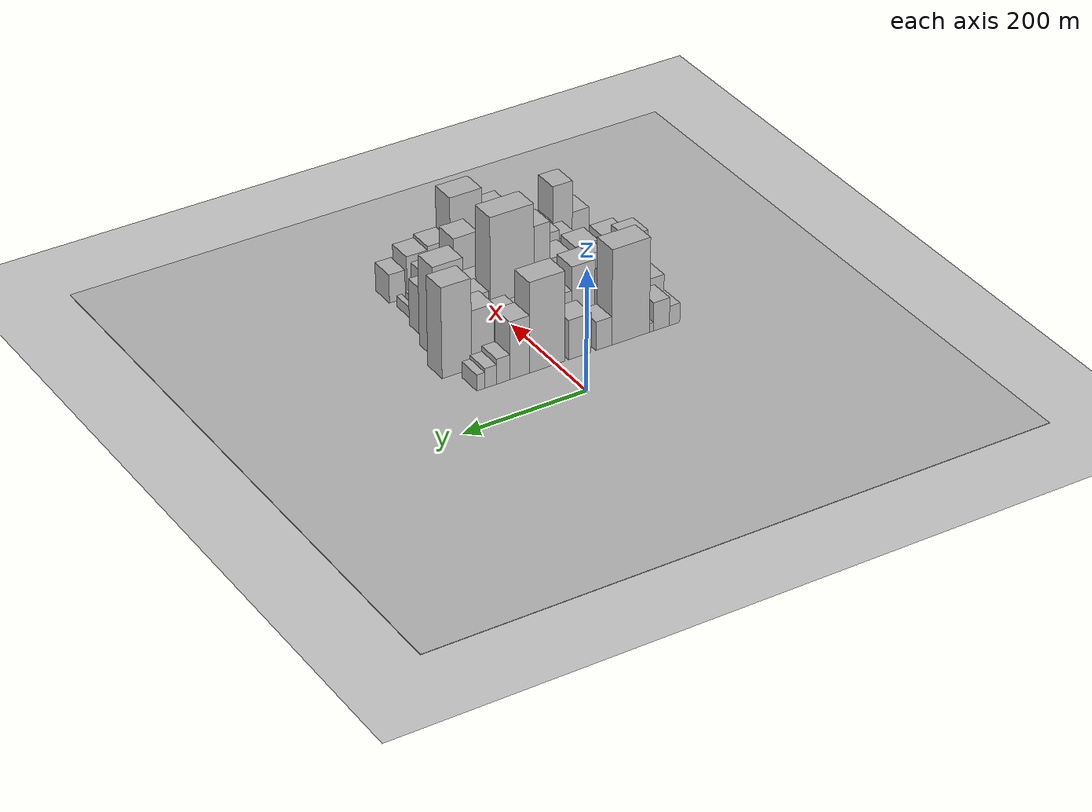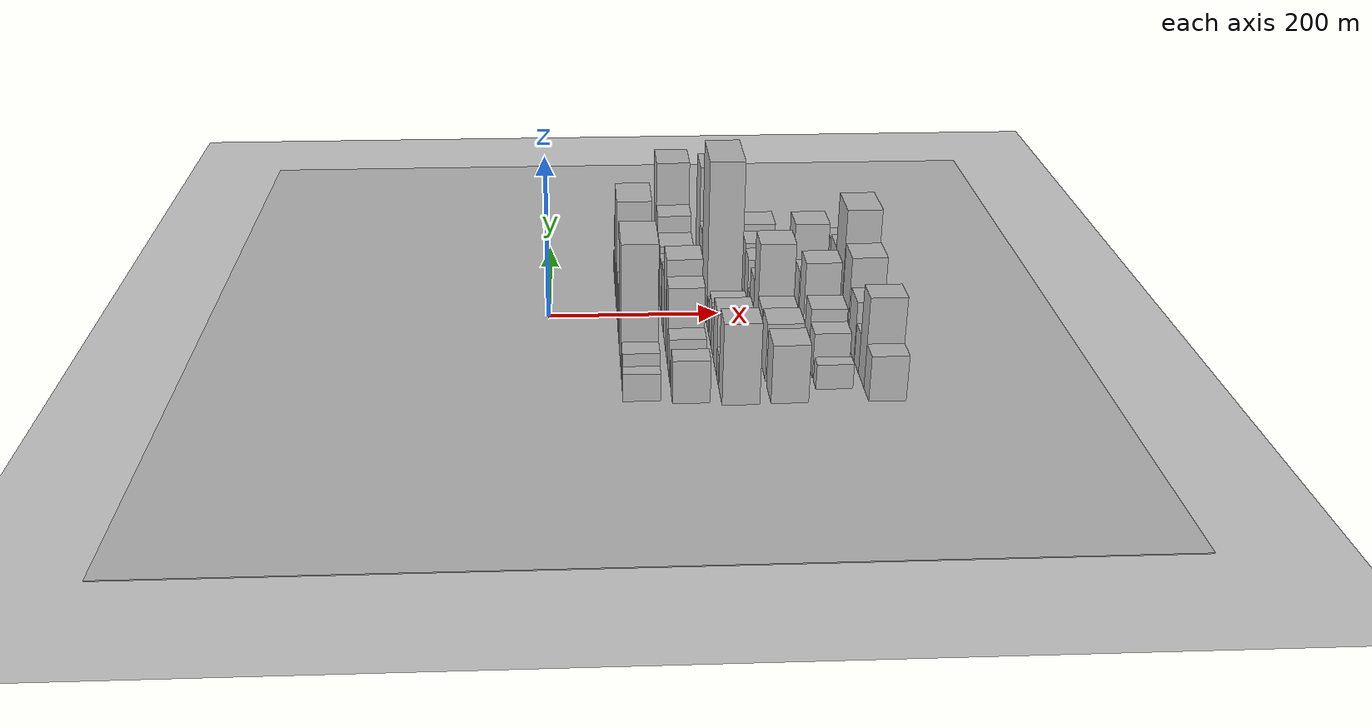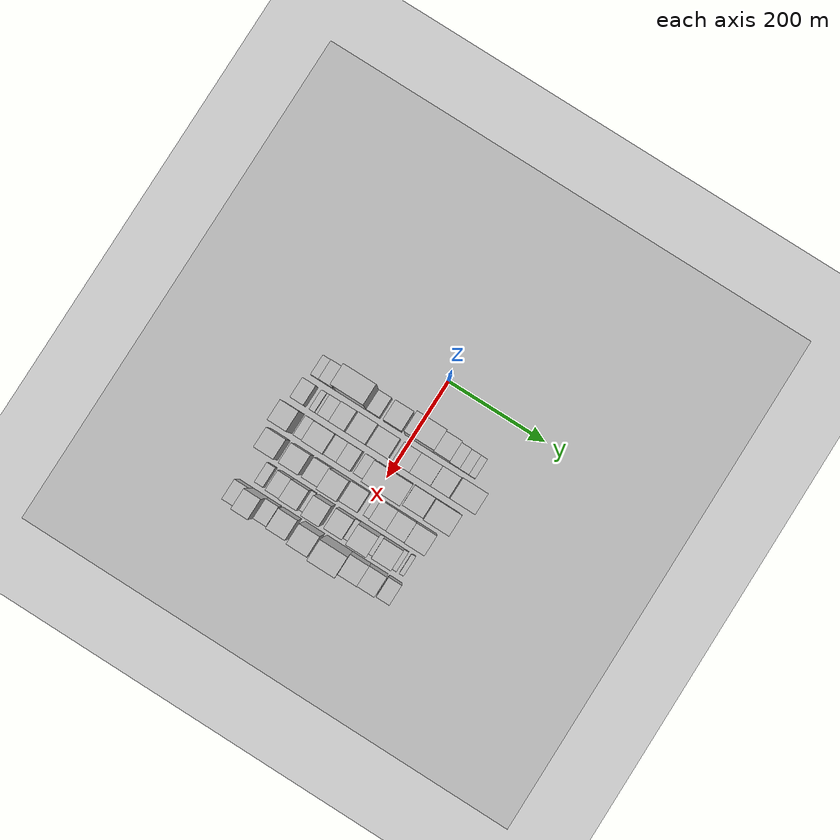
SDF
<sdf version="1.6">
 <world name="default">
  <include><name>ground_plane_1</name><uri>model://HANNAS_ground_plane</uri></include>
  <include>
   <name>ground_plane_2</name>
   <uri>model://HANNAS_ground_plane</uri>
   <pose>100 0 0  0 0 0</pose>
  </include>
  <model name="building_23">
   <static>1</static>
   <pose>100.0000 -197.5785 0 0.000000 0.000000 0.000000</pose>
   <link name="link">
    <pose>0 0 16.50 0 0 0</pose>
    <collision name="collision"><geometry><box><size>40.0000 17.6627 33.0000</size></box></geometry></collision>
    <visual name="visual">
     <cast_shadows>0</cast_shadows>
     <geometry><box><size>40.0000 17.6627 33.0000</size></box></geometry>
     <material>
      <script>
       <uri>model://HANNAS_wall/materials/scripts</uri>
       <uri>model://HANNAS_wall/materials/textures</uri>
       <name>vrc/HANNAS_wall</name>
      </script>
     </material>
    </visual>
   </link>
  </model>
  <model name="building_24">
   <static>1</static>
   <pose>100.0000 -175.1531 0 0.000000 0.000000 0.000000</pose>
   <link name="link">
    <pose>0 0 24.00 0 0 0</pose>
    <collision name="collision"><geometry><box><size>40.0000 27.1880 48.0000</size></box></geometry></collision>
    <visual name="visual">
     <cast_shadows>0</cast_shadows>
     <geometry><box><size>40.0000 27.1880 48.0000</size></box></geometry>
     <material>
      <script>
       <uri>model://HANNAS_wall/materials/scripts</uri>
       <uri>model://HANNAS_wall/materials/textures</uri>
       <name>vrc/HANNAS_wall</name>
      </script>
     </material>
    </visual>
   </link>
  </model>
  <model name="building_25">
   <static>1</static>
   <pose>100.0000 -158.2635 0 0.000000 0.000000 0.000000</pose>
   <link name="link">
    <pose>0 0 7.50 0 0 0</pose>
    <collision name="collision"><geometry><box><size>40.0000 6.5912 15.0000</size></box></geometry></collision>
    <visual name="visual">
     <cast_shadows>0</cast_shadows>
     <geometry><box><size>40.0000 6.5912 15.0000</size></box></geometry>
     <material>
      <script>
       <uri>model://HANNAS_wall/materials/scripts</uri>
       <uri>model://HANNAS_wall/materials/textures</uri>
       <name>vrc/HANNAS_wall</name>
      </script>
     </material>
    </visual>
   </link>
  </model>
  <model name="building_26">
   <static>1</static>
   <pose>100.0000 -123.3607 0 0.000000 0.000000 0.000000</pose>
   <link name="link">
    <pose>0 0 79.50 0 0 0</pose>
    <collision name="collision"><geometry><box><size>40.0000 63.2144 159.0000</size></box></geometry></collision>
    <visual name="visual">
     <cast_shadows>0</cast_shadows>
     <geometry><box><size>40.0000 63.2144 159.0000</size></box></geometry>
     <material>
      <script>
       <uri>model://HANNAS_wall/materials/scripts</uri>
       <uri>model://HANNAS_wall/materials/textures</uri>
       <name>vrc/HANNAS_wall</name>
      </script>
     </material>
    </visual>
   </link>
  </model>
  <model name="building_27">
   <static>1</static>
   <pose>100.0000 -78.5831 0 0.000000 0.000000 0.000000</pose>
   <link name="link">
    <pose>0 0 24.00 0 0 0</pose>
    <collision name="collision"><geometry><box><size>40.0000 26.3408 48.0000</size></box></geometry></collision>
    <visual name="visual">
     <cast_shadows>0</cast_shadows>
     <geometry><box><size>40.0000 26.3408 48.0000</size></box></geometry>
     <material>
      <script>
       <uri>model://HANNAS_wall/materials/scripts</uri>
       <uri>model://HANNAS_wall/materials/textures</uri>
       <name>vrc/HANNAS_wall</name>
      </script>
     </material>
    </visual>
   </link>
  </model>
  <model name="building_28">
   <static>1</static>
   <pose>100.0000 -38.6893 0 0.000000 0.000000 0.000000</pose>
   <link name="link">
    <pose>0 0 33.00 0 0 0</pose>
    <collision name="collision"><geometry><box><size>40.0000 37.4467 66.0000</size></box></geometry></collision>
    <visual name="visual">
     <cast_shadows>0</cast_shadows>
     <geometry><box><size>40.0000 37.4467 66.0000</size></box></geometry>
     <material>
      <script>
       <uri>model://HANNAS_wall/materials/scripts</uri>
       <uri>model://HANNAS_wall/materials/textures</uri>
       <name>vrc/HANNAS_wall</name>
      </script>
     </material>
    </visual>
   </link>
  </model>
  <model name="building_29">
   <static>1</static>
   <pose>100.0000 14.9966 0 0.000000 0.000000 0.000000</pose>
   <link name="link">
    <pose>0 0 75.00 0 0 0</pose>
    <collision name="collision"><geometry><box><size>40.0000 57.9252 150.0000</size></box></geometry></collision>
    <visual name="visual">
     <cast_shadows>0</cast_shadows>
     <geometry><box><size>40.0000 57.9252 150.0000</size></box></geometry>
     <material>
      <script>
       <uri>model://HANNAS_wall/materials/scripts</uri>
       <uri>model://HANNAS_wall/materials/textures</uri>
       <name>vrc/HANNAS_wall</name>
      </script>
     </material>
    </visual>
   </link>
  </model>
  <model name="building_30">
   <static>1</static>
   <pose>100.0000 59.9038 0 0.000000 0.000000 0.000000</pose>
   <link name="link">
    <pose>0 0 48.00 0 0 0</pose>
    <collision name="collision"><geometry><box><size>40.0000 31.8891 96.0000</size></box></geometry></collision>
    <visual name="visual">
     <cast_shadows>0</cast_shadows>
     <geometry><box><size>40.0000 31.8891 96.0000</size></box></geometry>
     <material>
      <script>
       <uri>model://HANNAS_wall/materials/scripts</uri>
       <uri>model://HANNAS_wall/materials/textures</uri>
       <name>vrc/HANNAS_wall</name>
      </script>
     </material>
    </visual>
   </link>
  </model>
  <model name="building_31">
   <static>1</static>
   <pose>100.0000 86.7170 0 0.000000 0.000000 0.000000</pose>
   <link name="link">
    <pose>0 0 21.00 0 0 0</pose>
    <collision name="collision"><geometry><box><size>40.0000 21.7373 42.0000</size></box></geometry></collision>
    <visual name="visual">
     <cast_shadows>0</cast_shadows>
     <geometry><box><size>40.0000 21.7373 42.0000</size></box></geometry>
     <material>
      <script>
       <uri>model://HANNAS_wall/materials/scripts</uri>
       <uri>model://HANNAS_wall/materials/textures</uri>
       <name>vrc/HANNAS_wall</name>
      </script>
     </material>
    </visual>
   </link>
  </model>
  <model name="building_32">
   <static>1</static>
   <pose>100.0000 107.1143 0 0.000000 0.000000 0.000000</pose>
   <link name="link">
    <pose>0 0 16.50 0 0 0</pose>
    <collision name="collision"><geometry><box><size>40.0000 19.0572 33.0000</size></box></geometry></collision>
    <visual name="visual">
     <cast_shadows>0</cast_shadows>
     <geometry><box><size>40.0000 19.0572 33.0000</size></box></geometry>
     <material>
      <script>
       <uri>model://HANNAS_wall/materials/scripts</uri>
       <uri>model://HANNAS_wall/materials/textures</uri>
       <name>vrc/HANNAS_wall</name>
      </script>
     </material>
    </visual>
   </link>
  </model>
  <model name="building_33">
   <static>1</static>
   <pose>100.0000 123.2830 0 0.000000 0.000000 0.000000</pose>
   <link name="link">
    <pose>0 0 13.50 0 0 0</pose>
    <collision name="collision"><geometry><box><size>40.0000 13.2802 27.0000</size></box></geometry></collision>
    <visual name="visual">
     <cast_shadows>0</cast_shadows>
     <geometry><box><size>40.0000 13.2802 27.0000</size></box></geometry>
     <material>
      <script>
       <uri>model://HANNAS_wall/materials/scripts</uri>
       <uri>model://HANNAS_wall/materials/textures</uri>
       <name>vrc/HANNAS_wall</name>
      </script>
     </material>
    </visual>
   </link>
  </model>
  <model name="building_74">
   <static>1</static>
   <pose>152.0000 -199.3614 0 0.000000 0.000000 0.000000</pose>
   <link name="link">
    <pose>0 0 25.50 0 0 0</pose>
    <collision name="collision"><geometry><box><size>40.0000 26.9984 51.0000</size></box></geometry></collision>
    <visual name="visual">
     <cast_shadows>0</cast_shadows>
     <geometry><box><size>40.0000 26.9984 51.0000</size></box></geometry>
     <material>
      <script>
       <uri>model://HANNAS_wall/materials/scripts</uri>
       <uri>model://HANNAS_wall/materials/textures</uri>
       <name>vrc/HANNAS_wall</name>
      </script>
     </material>
    </visual>
   </link>
  </model>
  <model name="building_75">
   <static>1</static>
   <pose>152.0000 -171.3383 0 0.000000 0.000000 0.000000</pose>
   <link name="link">
    <pose>0 0 13.50 0 0 0</pose>
    <collision name="collision"><geometry><box><size>40.0000 11.0480 27.0000</size></box></geometry></collision>
    <visual name="visual">
     <cast_shadows>0</cast_shadows>
     <geometry><box><size>40.0000 11.0480 27.0000</size></box></geometry>
     <material>
      <script>
       <uri>model://HANNAS_wall/materials/scripts</uri>
       <uri>model://HANNAS_wall/materials/textures</uri>
       <name>vrc/HANNAS_wall</name>
      </script>
     </material>
    </visual>
   </link>
  </model>
  <model name="building_76">
   <static>1</static>
   <pose>152.0000 -161.9786 0 0.000000 0.000000 0.000000</pose>
   <link name="link">
    <pose>0 0 9.00 0 0 0</pose>
    <collision name="collision"><geometry><box><size>40.0000 7.6713 18.0000</size></box></geometry></collision>
    <visual name="visual">
     <cast_shadows>0</cast_shadows>
     <geometry><box><size>40.0000 7.6713 18.0000</size></box></geometry>
     <material>
      <script>
       <uri>model://HANNAS_wall/materials/scripts</uri>
       <uri>model://HANNAS_wall/materials/textures</uri>
       <name>vrc/HANNAS_wall</name>
      </script>
     </material>
    </visual>
   </link>
  </model>
  <model name="building_77">
   <static>1</static>
   <pose>152.0000 -144.4575 0 0.000000 0.000000 0.000000</pose>
   <link name="link">
    <pose>0 0 24.00 0 0 0</pose>
    <collision name="collision"><geometry><box><size>40.0000 27.3708 48.0000</size></box></geometry></collision>
    <visual name="visual">
     <cast_shadows>0</cast_shadows>
     <geometry><box><size>40.0000 27.3708 48.0000</size></box></geometry>
     <material>
      <script>
       <uri>model://HANNAS_wall/materials/scripts</uri>
       <uri>model://HANNAS_wall/materials/textures</uri>
       <name>vrc/HANNAS_wall</name>
      </script>
     </material>
    </visual>
   </link>
  </model>
  <model name="building_78">
   <static>1</static>
   <pose>152.0000 -115.3826 0 0.000000 0.000000 0.000000</pose>
   <link name="link">
    <pose>0 0 48.00 0 0 0</pose>
    <collision name="collision"><geometry><box><size>40.0000 30.7791 96.0000</size></box></geometry></collision>
    <visual name="visual">
     <cast_shadows>0</cast_shadows>
     <geometry><box><size>40.0000 30.7791 96.0000</size></box></geometry>
     <material>
      <script>
       <uri>model://HANNAS_wall/materials/scripts</uri>
       <uri>model://HANNAS_wall/materials/textures</uri>
       <name>vrc/HANNAS_wall</name>
      </script>
     </material>
    </visual>
   </link>
  </model>
  <model name="building_79">
   <static>1</static>
   <pose>152.0000 -76.7484 0 0.000000 0.000000 0.000000</pose>
   <link name="link">
    <pose>0 0 57.00 0 0 0</pose>
    <collision name="collision"><geometry><box><size>40.0000 38.4891 114.0000</size></box></geometry></collision>
    <visual name="visual">
     <cast_shadows>0</cast_shadows>
     <geometry><box><size>40.0000 38.4891 114.0000</size></box></geometry>
     <material>
      <script>
       <uri>model://HANNAS_wall/materials/scripts</uri>
       <uri>model://HANNAS_wall/materials/textures</uri>
       <name>vrc/HANNAS_wall</name>
      </script>
     </material>
    </visual>
   </link>
  </model>
  <model name="building_80">
   <static>1</static>
   <pose>152.0000 -35.9787 0 0.000000 0.000000 0.000000</pose>
   <link name="link">
    <pose>0 0 37.50 0 0 0</pose>
    <collision name="collision"><geometry><box><size>40.0000 43.0503 75.0000</size></box></geometry></collision>
    <visual name="visual">
     <cast_shadows>0</cast_shadows>
     <geometry><box><size>40.0000 43.0503 75.0000</size></box></geometry>
     <material>
      <script>
       <uri>model://HANNAS_wall/materials/scripts</uri>
       <uri>model://HANNAS_wall/materials/textures</uri>
       <name>vrc/HANNAS_wall</name>
      </script>
     </material>
    </visual>
   </link>
  </model>
  <model name="building_81">
   <static>1</static>
   <pose>152.0000 11.0059 0 0.000000 0.000000 0.000000</pose>
   <link name="link">
    <pose>0 0 33.00 0 0 0</pose>
    <collision name="collision"><geometry><box><size>40.0000 34.9190 66.0000</size></box></geometry></collision>
    <visual name="visual">
     <cast_shadows>0</cast_shadows>
     <geometry><box><size>40.0000 34.9190 66.0000</size></box></geometry>
     <material>
      <script>
       <uri>model://HANNAS_wall/materials/scripts</uri>
       <uri>model://HANNAS_wall/materials/textures</uri>
       <name>vrc/HANNAS_wall</name>
      </script>
     </material>
    </visual>
   </link>
  </model>
  <model name="building_82">
   <static>1</static>
   <pose>152.0000 49.4625 0 0.000000 0.000000 0.000000</pose>
   <link name="link">
    <pose>0 0 37.50 0 0 0</pose>
    <collision name="collision"><geometry><box><size>40.0000 41.9942 75.0000</size></box></geometry></collision>
    <visual name="visual">
     <cast_shadows>0</cast_shadows>
     <geometry><box><size>40.0000 41.9942 75.0000</size></box></geometry>
     <material>
      <script>
       <uri>model://HANNAS_wall/materials/scripts</uri>
       <uri>model://HANNAS_wall/materials/textures</uri>
       <name>vrc/HANNAS_wall</name>
      </script>
     </material>
    </visual>
   </link>
  </model>
  <model name="building_83">
   <static>1</static>
   <pose>152.0000 88.7777 0 0.000000 0.000000 0.000000</pose>
   <link name="link">
    <pose>0 0 48.00 0 0 0</pose>
    <collision name="collision"><geometry><box><size>40.0000 36.6362 96.0000</size></box></geometry></collision>
    <visual name="visual">
     <cast_shadows>0</cast_shadows>
     <geometry><box><size>40.0000 36.6362 96.0000</size></box></geometry>
     <material>
      <script>
       <uri>model://HANNAS_wall/materials/scripts</uri>
       <uri>model://HANNAS_wall/materials/textures</uri>
       <name>vrc/HANNAS_wall</name>
      </script>
     </material>
    </visual>
   </link>
  </model>
  <model name="building_84">
   <static>1</static>
   <pose>152.0000 131.1777 0 0.000000 0.000000 0.000000</pose>
   <link name="link">
    <pose>0 0 75.00 0 0 0</pose>
    <collision name="collision"><geometry><box><size>40.0000 48.1637 150.0000</size></box></geometry></collision>
    <visual name="visual">
     <cast_shadows>0</cast_shadows>
     <geometry><box><size>40.0000 48.1637 150.0000</size></box></geometry>
     <material>
      <script>
       <uri>model://HANNAS_wall/materials/scripts</uri>
       <uri>model://HANNAS_wall/materials/textures</uri>
       <name>vrc/HANNAS_wall</name>
      </script>
     </material>
    </visual>
   </link>
  </model>
  <model name="building_128">
   <static>1</static>
   <pose>204.0000 -199.7542 0 0.000000 0.000000 0.000000</pose>
   <link name="link">
    <pose>0 0 48.00 0 0 0</pose>
    <collision name="collision"><geometry><box><size>40.0000 37.2181 96.0000</size></box></geometry></collision>
    <visual name="visual">
     <cast_shadows>0</cast_shadows>
     <geometry><box><size>40.0000 37.2181 96.0000</size></box></geometry>
     <material>
      <script>
       <uri>model://HANNAS_wall/materials/scripts</uri>
       <uri>model://HANNAS_wall/materials/textures</uri>
       <name>vrc/HANNAS_wall</name>
      </script>
     </material>
    </visual>
   </link>
  </model>
  <model name="building_129">
   <static>1</static>
   <pose>204.0000 -164.5757 0 0.000000 0.000000 0.000000</pose>
   <link name="link">
    <pose>0 0 18.00 0 0 0</pose>
    <collision name="collision"><geometry><box><size>40.0000 21.1389 36.0000</size></box></geometry></collision>
    <visual name="visual">
     <cast_shadows>0</cast_shadows>
     <geometry><box><size>40.0000 21.1389 36.0000</size></box></geometry>
     <material>
      <script>
       <uri>model://HANNAS_wall/materials/scripts</uri>
       <uri>model://HANNAS_wall/materials/textures</uri>
       <name>vrc/HANNAS_wall</name>
      </script>
     </material>
    </visual>
   </link>
  </model>
  <model name="building_130">
   <static>1</static>
   <pose>204.0000 -133.0134 0 0.000000 0.000000 0.000000</pose>
   <link name="link">
    <pose>0 0 37.50 0 0 0</pose>
    <collision name="collision"><geometry><box><size>40.0000 41.9856 75.0000</size></box></geometry></collision>
    <visual name="visual">
     <cast_shadows>0</cast_shadows>
     <geometry><box><size>40.0000 41.9856 75.0000</size></box></geometry>
     <material>
      <script>
       <uri>model://HANNAS_wall/materials/scripts</uri>
       <uri>model://HANNAS_wall/materials/textures</uri>
       <name>vrc/HANNAS_wall</name>
      </script>
     </material>
    </visual>
   </link>
  </model>
  <model name="building_131">
   <static>1</static>
   <pose>204.0000 -99.1862 0 0.000000 0.000000 0.000000</pose>
   <link name="link">
    <pose>0 0 25.50 0 0 0</pose>
    <collision name="collision"><geometry><box><size>40.0000 25.6688 51.0000</size></box></geometry></collision>
    <visual name="visual">
     <cast_shadows>0</cast_shadows>
     <geometry><box><size>40.0000 25.6688 51.0000</size></box></geometry>
     <material>
      <script>
       <uri>model://HANNAS_wall/materials/scripts</uri>
       <uri>model://HANNAS_wall/materials/textures</uri>
       <name>vrc/HANNAS_wall</name>
      </script>
     </material>
    </visual>
   </link>
  </model>
  <model name="building_132">
   <static>1</static>
   <pose>204.0000 -72.0306 0 0.000000 0.000000 0.000000</pose>
   <link name="link">
    <pose>0 0 28.50 0 0 0</pose>
    <collision name="collision"><geometry><box><size>40.0000 28.6424 57.0000</size></box></geometry></collision>
    <visual name="visual">
     <cast_shadows>0</cast_shadows>
     <geometry><box><size>40.0000 28.6424 57.0000</size></box></geometry>
     <material>
      <script>
       <uri>model://HANNAS_wall/materials/scripts</uri>
       <uri>model://HANNAS_wall/materials/textures</uri>
       <name>vrc/HANNAS_wall</name>
      </script>
     </material>
    </visual>
   </link>
  </model>
  <model name="building_133">
   <static>1</static>
   <pose>204.0000 -42.7943 0 0.000000 0.000000 0.000000</pose>
   <link name="link">
    <pose>0 0 19.50 0 0 0</pose>
    <collision name="collision"><geometry><box><size>40.0000 19.8303 39.0000</size></box></geometry></collision>
    <visual name="visual">
     <cast_shadows>0</cast_shadows>
     <geometry><box><size>40.0000 19.8303 39.0000</size></box></geometry>
     <material>
      <script>
       <uri>model://HANNAS_wall/materials/scripts</uri>
       <uri>model://HANNAS_wall/materials/textures</uri>
       <name>vrc/HANNAS_wall</name>
      </script>
     </material>
    </visual>
   </link>
  </model>
  <model name="building_134">
   <static>1</static>
   <pose>204.0000 9.0122 0 0.000000 0.000000 0.000000</pose>
   <link name="link">
    <pose>0 0 100.50 0 0 0</pose>
    <collision name="collision"><geometry><box><size>40.0000 71.7827 201.0000</size></box></geometry></collision>
    <visual name="visual">
     <cast_shadows>0</cast_shadows>
     <geometry><box><size>40.0000 71.7827 201.0000</size></box></geometry>
     <material>
      <script>
       <uri>model://HANNAS_wall/materials/scripts</uri>
       <uri>model://HANNAS_wall/materials/textures</uri>
       <name>vrc/HANNAS_wall</name>
      </script>
     </material>
    </visual>
   </link>
  </model>
  <model name="building_135">
   <static>1</static>
   <pose>204.0000 68.5169 0 0.000000 0.000000 0.000000</pose>
   <link name="link">
    <pose>0 0 40.50 0 0 0</pose>
    <collision name="collision"><geometry><box><size>40.0000 41.2268 81.0000</size></box></geometry></collision>
    <visual name="visual">
     <cast_shadows>0</cast_shadows>
     <geometry><box><size>40.0000 41.2268 81.0000</size></box></geometry>
     <material>
      <script>
       <uri>model://HANNAS_wall/materials/scripts</uri>
       <uri>model://HANNAS_wall/materials/textures</uri>
       <name>vrc/HANNAS_wall</name>
      </script>
     </material>
    </visual>
   </link>
  </model>
  <model name="building_136">
   <static>1</static>
   <pose>204.0000 113.7390 0 0.000000 0.000000 0.000000</pose>
   <link name="link">
    <pose>0 0 75.00 0 0 0</pose>
    <collision name="collision"><geometry><box><size>40.0000 49.2173 150.0000</size></box></geometry></collision>
    <visual name="visual">
     <cast_shadows>0</cast_shadows>
     <geometry><box><size>40.0000 49.2173 150.0000</size></box></geometry>
     <material>
      <script>
       <uri>model://HANNAS_wall/materials/scripts</uri>
       <uri>model://HANNAS_wall/materials/textures</uri>
       <name>vrc/HANNAS_wall</name>
      </script>
     </material>
    </visual>
   </link>
  </model>
  <model name="building_179">
   <static>1</static>
   <pose>256.0000 -196.9965 0 0.000000 0.000000 0.000000</pose>
   <link name="link">
    <pose>0 0 34.50 0 0 0</pose>
    <collision name="collision"><geometry><box><size>40.0000 39.6292 69.0000</size></box></geometry></collision>
    <visual name="visual">
     <cast_shadows>0</cast_shadows>
     <geometry><box><size>40.0000 39.6292 69.0000</size></box></geometry>
     <material>
      <script>
       <uri>model://HANNAS_wall/materials/scripts</uri>
       <uri>model://HANNAS_wall/materials/textures</uri>
       <name>vrc/HANNAS_wall</name>
      </script>
     </material>
    </visual>
   </link>
  </model>
  <model name="building_180">
   <static>1</static>
   <pose>256.0000 -147.5989 0 0.000000 0.000000 0.000000</pose>
   <link name="link">
    <pose>0 0 34.50 0 0 0</pose>
    <collision name="collision"><geometry><box><size>40.0000 39.1661 69.0000</size></box></geometry></collision>
    <visual name="visual">
     <cast_shadows>0</cast_shadows>
     <geometry><box><size>40.0000 39.1661 69.0000</size></box></geometry>
     <material>
      <script>
       <uri>model://HANNAS_wall/materials/scripts</uri>
       <uri>model://HANNAS_wall/materials/textures</uri>
       <name>vrc/HANNAS_wall</name>
      </script>
     </material>
    </visual>
   </link>
  </model>
  <model name="building_181">
   <static>1</static>
   <pose>256.0000 -103.7939 0 0.000000 0.000000 0.000000</pose>
   <link name="link">
    <pose>0 0 31.50 0 0 0</pose>
    <collision name="collision"><geometry><box><size>40.0000 36.4439 63.0000</size></box></geometry></collision>
    <visual name="visual">
     <cast_shadows>0</cast_shadows>
     <geometry><box><size>40.0000 36.4439 63.0000</size></box></geometry>
     <material>
      <script>
       <uri>model://HANNAS_wall/materials/scripts</uri>
       <uri>model://HANNAS_wall/materials/textures</uri>
       <name>vrc/HANNAS_wall</name>
      </script>
     </material>
    </visual>
   </link>
  </model>
  <model name="building_182">
   <static>1</static>
   <pose>256.0000 -66.1404 0 0.000000 0.000000 0.000000</pose>
   <link name="link">
    <pose>0 0 63.00 0 0 0</pose>
    <collision name="collision"><geometry><box><size>40.0000 38.8633 126.0000</size></box></geometry></collision>
    <visual name="visual">
     <cast_shadows>0</cast_shadows>
     <geometry><box><size>40.0000 38.8633 126.0000</size></box></geometry>
     <material>
      <script>
       <uri>model://HANNAS_wall/materials/scripts</uri>
       <uri>model://HANNAS_wall/materials/textures</uri>
       <name>vrc/HANNAS_wall</name>
      </script>
     </material>
    </visual>
   </link>
  </model>
  <model name="building_183">
   <static>1</static>
   <pose>256.0000 -28.2740 0 0.000000 0.000000 0.000000</pose>
   <link name="link">
    <pose>0 0 31.50 0 0 0</pose>
    <collision name="collision"><geometry><box><size>40.0000 36.8695 63.0000</size></box></geometry></collision>
    <visual name="visual">
     <cast_shadows>0</cast_shadows>
     <geometry><box><size>40.0000 36.8695 63.0000</size></box></geometry>
     <material>
      <script>
       <uri>model://HANNAS_wall/materials/scripts</uri>
       <uri>model://HANNAS_wall/materials/textures</uri>
       <name>vrc/HANNAS_wall</name>
      </script>
     </material>
    </visual>
   </link>
  </model>
  <model name="building_184">
   <static>1</static>
   <pose>256.0000 6.6878 0 0.000000 0.000000 0.000000</pose>
   <link name="link">
    <pose>0 0 13.50 0 0 0</pose>
    <collision name="collision"><geometry><box><size>40.0000 13.0541 27.0000</size></box></geometry></collision>
    <visual name="visual">
     <cast_shadows>0</cast_shadows>
     <geometry><box><size>40.0000 13.0541 27.0000</size></box></geometry>
     <material>
      <script>
       <uri>model://HANNAS_wall/materials/scripts</uri>
       <uri>model://HANNAS_wall/materials/textures</uri>
       <name>vrc/HANNAS_wall</name>
      </script>
     </material>
    </visual>
   </link>
  </model>
  <model name="building_185">
   <static>1</static>
   <pose>256.0000 30.3232 0 0.000000 0.000000 0.000000</pose>
   <link name="link">
    <pose>0 0 31.50 0 0 0</pose>
    <collision name="collision"><geometry><box><size>40.0000 34.2167 63.0000</size></box></geometry></collision>
    <visual name="visual">
     <cast_shadows>0</cast_shadows>
     <geometry><box><size>40.0000 34.2167 63.0000</size></box></geometry>
     <material>
      <script>
       <uri>model://HANNAS_wall/materials/scripts</uri>
       <uri>model://HANNAS_wall/materials/textures</uri>
       <name>vrc/HANNAS_wall</name>
      </script>
     </material>
    </visual>
   </link>
  </model>
  <model name="building_186">
   <static>1</static>
   <pose>256.0000 65.9284 0 0.000000 0.000000 0.000000</pose>
   <link name="link">
    <pose>0 0 34.50 0 0 0</pose>
    <collision name="collision"><geometry><box><size>40.0000 36.9938 69.0000</size></box></geometry></collision>
    <visual name="visual">
     <cast_shadows>0</cast_shadows>
     <geometry><box><size>40.0000 36.9938 69.0000</size></box></geometry>
     <material>
      <script>
       <uri>model://HANNAS_wall/materials/scripts</uri>
       <uri>model://HANNAS_wall/materials/textures</uri>
       <name>vrc/HANNAS_wall</name>
      </script>
     </material>
    </visual>
   </link>
  </model>
  <model name="building_187">
   <static>1</static>
   <pose>256.0000 104.5631 0 0.000000 0.000000 0.000000</pose>
   <link name="link">
    <pose>0 0 39.00 0 0 0</pose>
    <collision name="collision"><geometry><box><size>40.0000 40.2755 78.0000</size></box></geometry></collision>
    <visual name="visual">
     <cast_shadows>0</cast_shadows>
     <geometry><box><size>40.0000 40.2755 78.0000</size></box></geometry>
     <material>
      <script>
       <uri>model://HANNAS_wall/materials/scripts</uri>
       <uri>model://HANNAS_wall/materials/textures</uri>
       <name>vrc/HANNAS_wall</name>
      </script>
     </material>
    </visual>
   </link>
  </model>
  <model name="building_230">
   <static>1</static>
   <pose>308.0000 -179.4766 0 0.000000 0.000000 0.000000</pose>
   <link name="link">
    <pose>0 0 15.00 0 0 0</pose>
    <collision name="collision"><geometry><box><size>40.0000 17.8192 30.0000</size></box></geometry></collision>
    <visual name="visual">
     <cast_shadows>0</cast_shadows>
     <geometry><box><size>40.0000 17.8192 30.0000</size></box></geometry>
     <material>
      <script>
       <uri>model://HANNAS_wall/materials/scripts</uri>
       <uri>model://HANNAS_wall/materials/textures</uri>
       <name>vrc/HANNAS_wall</name>
      </script>
     </material>
    </visual>
   </link>
  </model>
  <model name="building_231">
   <static>1</static>
   <pose>308.0000 -148.2018 0 0.000000 0.000000 0.000000</pose>
   <link name="link">
    <pose>0 0 27.00 0 0 0</pose>
    <collision name="collision"><geometry><box><size>40.0000 28.7304 54.0000</size></box></geometry></collision>
    <visual name="visual">
     <cast_shadows>0</cast_shadows>
     <geometry><box><size>40.0000 28.7304 54.0000</size></box></geometry>
     <material>
      <script>
       <uri>model://HANNAS_wall/materials/scripts</uri>
       <uri>model://HANNAS_wall/materials/textures</uri>
       <name>vrc/HANNAS_wall</name>
      </script>
     </material>
    </visual>
   </link>
  </model>
  <model name="building_232">
   <static>1</static>
   <pose>308.0000 -115.8660 0 0.000000 0.000000 0.000000</pose>
   <link name="link">
    <pose>0 0 34.50 0 0 0</pose>
    <collision name="collision"><geometry><box><size>40.0000 35.9412 69.0000</size></box></geometry></collision>
    <visual name="visual">
     <cast_shadows>0</cast_shadows>
     <geometry><box><size>40.0000 35.9412 69.0000</size></box></geometry>
     <material>
      <script>
       <uri>model://HANNAS_wall/materials/scripts</uri>
       <uri>model://HANNAS_wall/materials/textures</uri>
       <name>vrc/HANNAS_wall</name>
      </script>
     </material>
    </visual>
   </link>
  </model>
  <model name="building_233">
   <static>1</static>
   <pose>308.0000 -93.0069 0 0.000000 0.000000 0.000000</pose>
   <link name="link">
    <pose>0 0 10.50 0 0 0</pose>
    <collision name="collision"><geometry><box><size>40.0000 9.7770 21.0000</size></box></geometry></collision>
    <visual name="visual">
     <cast_shadows>0</cast_shadows>
     <geometry><box><size>40.0000 9.7770 21.0000</size></box></geometry>
     <material>
      <script>
       <uri>model://HANNAS_wall/materials/scripts</uri>
       <uri>model://HANNAS_wall/materials/textures</uri>
       <name>vrc/HANNAS_wall</name>
      </script>
     </material>
    </visual>
   </link>
  </model>
  <model name="building_234">
   <static>1</static>
   <pose>308.0000 -67.6271 0 0.000000 0.000000 0.000000</pose>
   <link name="link">
    <pose>0 0 51.00 0 0 0</pose>
    <collision name="collision"><geometry><box><size>40.0000 34.9825 102.0000</size></box></geometry></collision>
    <visual name="visual">
     <cast_shadows>0</cast_shadows>
     <geometry><box><size>40.0000 34.9825 102.0000</size></box></geometry>
     <material>
      <script>
       <uri>model://HANNAS_wall/materials/scripts</uri>
       <uri>model://HANNAS_wall/materials/textures</uri>
       <name>vrc/HANNAS_wall</name>
      </script>
     </material>
    </visual>
   </link>
  </model>
  <model name="building_235">
   <static>1</static>
   <pose>308.0000 -24.9886 0 0.000000 0.000000 0.000000</pose>
   <link name="link">
    <pose>0 0 36.00 0 0 0</pose>
    <collision name="collision"><geometry><box><size>40.0000 36.2946 72.0000</size></box></geometry></collision>
    <visual name="visual">
     <cast_shadows>0</cast_shadows>
     <geometry><box><size>40.0000 36.2946 72.0000</size></box></geometry>
     <material>
      <script>
       <uri>model://HANNAS_wall/materials/scripts</uri>
       <uri>model://HANNAS_wall/materials/textures</uri>
       <name>vrc/HANNAS_wall</name>
      </script>
     </material>
    </visual>
   </link>
  </model>
  <model name="building_236">
   <static>1</static>
   <pose>308.0000 -1.6600 0 0.000000 0.000000 0.000000</pose>
   <link name="link">
    <pose>0 0 12.00 0 0 0</pose>
    <collision name="collision"><geometry><box><size>40.0000 10.3626 24.0000</size></box></geometry></collision>
    <visual name="visual">
     <cast_shadows>0</cast_shadows>
     <geometry><box><size>40.0000 10.3626 24.0000</size></box></geometry>
     <material>
      <script>
       <uri>model://HANNAS_wall/materials/scripts</uri>
       <uri>model://HANNAS_wall/materials/textures</uri>
       <name>vrc/HANNAS_wall</name>
      </script>
     </material>
    </visual>
   </link>
  </model>
  <model name="building_237">
   <static>1</static>
   <pose>308.0000 23.5186 0 0.000000 0.000000 0.000000</pose>
   <link name="link">
    <pose>0 0 55.50 0 0 0</pose>
    <collision name="collision"><geometry><box><size>40.0000 39.9946 111.0000</size></box></geometry></collision>
    <visual name="visual">
     <cast_shadows>0</cast_shadows>
     <geometry><box><size>40.0000 39.9946 111.0000</size></box></geometry>
     <material>
      <script>
       <uri>model://HANNAS_wall/materials/scripts</uri>
       <uri>model://HANNAS_wall/materials/textures</uri>
       <name>vrc/HANNAS_wall</name>
      </script>
     </material>
    </visual>
   </link>
  </model>
  <model name="building_238">
   <static>1</static>
   <pose>308.0000 47.6398 0 0.000000 0.000000 0.000000</pose>
   <link name="link">
    <pose>0 0 9.00 0 0 0</pose>
    <collision name="collision"><geometry><box><size>40.0000 8.2478 18.0000</size></box></geometry></collision>
    <visual name="visual">
     <cast_shadows>0</cast_shadows>
     <geometry><box><size>40.0000 8.2478 18.0000</size></box></geometry>
     <material>
      <script>
       <uri>model://HANNAS_wall/materials/scripts</uri>
       <uri>model://HANNAS_wall/materials/textures</uri>
       <name>vrc/HANNAS_wall</name>
      </script>
     </material>
    </visual>
   </link>
  </model>
  <model name="building_239">
   <static>1</static>
   <pose>308.0000 71.4185 0 0.000000 0.000000 0.000000</pose>
   <link name="link">
    <pose>0 0 33.00 0 0 0</pose>
    <collision name="collision"><geometry><box><size>40.0000 39.3096 66.0000</size></box></geometry></collision>
    <visual name="visual">
     <cast_shadows>0</cast_shadows>
     <geometry><box><size>40.0000 39.3096 66.0000</size></box></geometry>
     <material>
      <script>
       <uri>model://HANNAS_wall/materials/scripts</uri>
       <uri>model://HANNAS_wall/materials/textures</uri>
       <name>vrc/HANNAS_wall</name>
      </script>
     </material>
    </visual>
   </link>
  </model>
  <model name="building_240">
   <static>1</static>
   <pose>308.0000 95.9729 0 0.000000 0.000000 0.000000</pose>
   <link name="link">
    <pose>0 0 10.50 0 0 0</pose>
    <collision name="collision"><geometry><box><size>40.0000 9.7993 21.0000</size></box></geometry></collision>
    <visual name="visual">
     <cast_shadows>0</cast_shadows>
     <geometry><box><size>40.0000 9.7993 21.0000</size></box></geometry>
     <material>
      <script>
       <uri>model://HANNAS_wall/materials/scripts</uri>
       <uri>model://HANNAS_wall/materials/textures</uri>
       <name>vrc/HANNAS_wall</name>
      </script>
     </material>
    </visual>
   </link>
  </model>
  <model name="building_241">
   <static>1</static>
   <pose>308.0000 111.1688 0 0.000000 0.000000 0.000000</pose>
   <link name="link">
    <pose>0 0 9.00 0 0 0</pose>
    <collision name="collision"><geometry><box><size>40.0000 8.5924 18.0000</size></box></geometry></collision>
    <visual name="visual">
     <cast_shadows>0</cast_shadows>
     <geometry><box><size>40.0000 8.5924 18.0000</size></box></geometry>
     <material>
      <script>
       <uri>model://HANNAS_wall/materials/scripts</uri>
       <uri>model://HANNAS_wall/materials/textures</uri>
       <name>vrc/HANNAS_wall</name>
      </script>
     </material>
    </visual>
   </link>
  </model>
  <model name="building_281">
   <static>1</static>
   <pose>360.0000 -202.1686 0 0.000000 0.000000 0.000000</pose>
   <link name="link">
    <pose>0 0 27.00 0 0 0</pose>
    <collision name="collision"><geometry><box><size>40.0000 28.6642 54.0000</size></box></geometry></collision>
    <visual name="visual">
     <cast_shadows>0</cast_shadows>
     <geometry><box><size>40.0000 28.6642 54.0000</size></box></geometry>
     <material>
      <script>
       <uri>model://HANNAS_wall/materials/scripts</uri>
       <uri>model://HANNAS_wall/materials/textures</uri>
       <name>vrc/HANNAS_wall</name>
      </script>
     </material>
    </visual>
   </link>
  </model>
  <model name="building_282">
   <static>1</static>
   <pose>360.0000 -171.2067 0 0.000000 0.000000 0.000000</pose>
   <link name="link">
    <pose>0 0 54.00 0 0 0</pose>
    <collision name="collision"><geometry><box><size>40.0000 33.2596 108.0000</size></box></geometry></collision>
    <visual name="visual">
     <cast_shadows>0</cast_shadows>
     <geometry><box><size>40.0000 33.2596 108.0000</size></box></geometry>
     <material>
      <script>
       <uri>model://HANNAS_wall/materials/scripts</uri>
       <uri>model://HANNAS_wall/materials/textures</uri>
       <name>vrc/HANNAS_wall</name>
      </script>
     </material>
    </visual>
   </link>
  </model>
  <model name="building_283">
   <static>1</static>
   <pose>360.0000 -141.3880 0 0.000000 0.000000 0.000000</pose>
   <link name="link">
    <pose>0 0 24.00 0 0 0</pose>
    <collision name="collision"><geometry><box><size>40.0000 26.3778 48.0000</size></box></geometry></collision>
    <visual name="visual">
     <cast_shadows>0</cast_shadows>
     <geometry><box><size>40.0000 26.3778 48.0000</size></box></geometry>
     <material>
      <script>
       <uri>model://HANNAS_wall/materials/scripts</uri>
       <uri>model://HANNAS_wall/materials/textures</uri>
       <name>vrc/HANNAS_wall</name>
      </script>
     </material>
    </visual>
   </link>
  </model>
  <model name="building_284">
   <static>1</static>
   <pose>360.0000 -105.9898 0 0.000000 0.000000 0.000000</pose>
   <link name="link">
    <pose>0 0 36.00 0 0 0</pose>
    <collision name="collision"><geometry><box><size>40.0000 38.4184 72.0000</size></box></geometry></collision>
    <visual name="visual">
     <cast_shadows>0</cast_shadows>
     <geometry><box><size>40.0000 38.4184 72.0000</size></box></geometry>
     <material>
      <script>
       <uri>model://HANNAS_wall/materials/scripts</uri>
       <uri>model://HANNAS_wall/materials/textures</uri>
       <name>vrc/HANNAS_wall</name>
      </script>
     </material>
    </visual>
   </link>
  </model>
  <model name="building_285">
   <static>1</static>
   <pose>360.0000 -59.3801 0 0.000000 0.000000 0.000000</pose>
   <link name="link">
    <pose>0 0 52.50 0 0 0</pose>
    <collision name="collision"><geometry><box><size>40.0000 40.8010 105.0000</size></box></geometry></collision>
    <visual name="visual">
     <cast_shadows>0</cast_shadows>
     <geometry><box><size>40.0000 40.8010 105.0000</size></box></geometry>
     <material>
      <script>
       <uri>model://HANNAS_wall/materials/scripts</uri>
       <uri>model://HANNAS_wall/materials/textures</uri>
       <name>vrc/HANNAS_wall</name>
      </script>
     </material>
    </visual>
   </link>
  </model>
  <model name="building_286">
   <static>1</static>
   <pose>360.0000 -8.2231 0 0.000000 0.000000 0.000000</pose>
   <link name="link">
    <pose>0 0 72.00 0 0 0</pose>
    <collision name="collision"><geometry><box><size>40.0000 53.5128 144.0000</size></box></geometry></collision>
    <visual name="visual">
     <cast_shadows>0</cast_shadows>
     <geometry><box><size>40.0000 53.5128 144.0000</size></box></geometry>
     <material>
      <script>
       <uri>model://HANNAS_wall/materials/scripts</uri>
       <uri>model://HANNAS_wall/materials/textures</uri>
       <name>vrc/HANNAS_wall</name>
      </script>
     </material>
    </visual>
   </link>
  </model>
  <model name="building_287">
   <static>1</static>
   <pose>360.0000 37.3769 0 0.000000 0.000000 0.000000</pose>
   <link name="link">
    <pose>0 0 37.50 0 0 0</pose>
    <collision name="collision"><geometry><box><size>40.0000 37.6872 75.0000</size></box></geometry></collision>
    <visual name="visual">
     <cast_shadows>0</cast_shadows>
     <geometry><box><size>40.0000 37.6872 75.0000</size></box></geometry>
     <material>
      <script>
       <uri>model://HANNAS_wall/materials/scripts</uri>
       <uri>model://HANNAS_wall/materials/textures</uri>
       <name>vrc/HANNAS_wall</name>
      </script>
     </material>
    </visual>
   </link>
  </model>
  <model name="building_288">
   <static>1</static>
   <pose>360.0000 73.6475 0 0.000000 0.000000 0.000000</pose>
   <link name="link">
    <pose>0 0 34.50 0 0 0</pose>
    <collision name="collision"><geometry><box><size>40.0000 34.8540 69.0000</size></box></geometry></collision>
    <visual name="visual">
     <cast_shadows>0</cast_shadows>
     <geometry><box><size>40.0000 34.8540 69.0000</size></box></geometry>
     <material>
      <script>
       <uri>model://HANNAS_wall/materials/scripts</uri>
       <uri>model://HANNAS_wall/materials/textures</uri>
       <name>vrc/HANNAS_wall</name>
      </script>
     </material>
    </visual>
   </link>
  </model>
  <model name="building_289">
   <static>1</static>
   <pose>360.0000 107.2313 0 0.000000 0.000000 0.000000</pose>
   <link name="link">
    <pose>0 0 24.00 0 0 0</pose>
    <collision name="collision"><geometry><box><size>40.0000 26.3136 48.0000</size></box></geometry></collision>
    <visual name="visual">
     <cast_shadows>0</cast_shadows>
     <geometry><box><size>40.0000 26.3136 48.0000</size></box></geometry>
     <material>
      <script>
       <uri>model://HANNAS_wall/materials/scripts</uri>
       <uri>model://HANNAS_wall/materials/textures</uri>
       <name>vrc/HANNAS_wall</name>
      </script>
     </material>
    </visual>
   </link>
  </model>
 </world>
</sdf>
